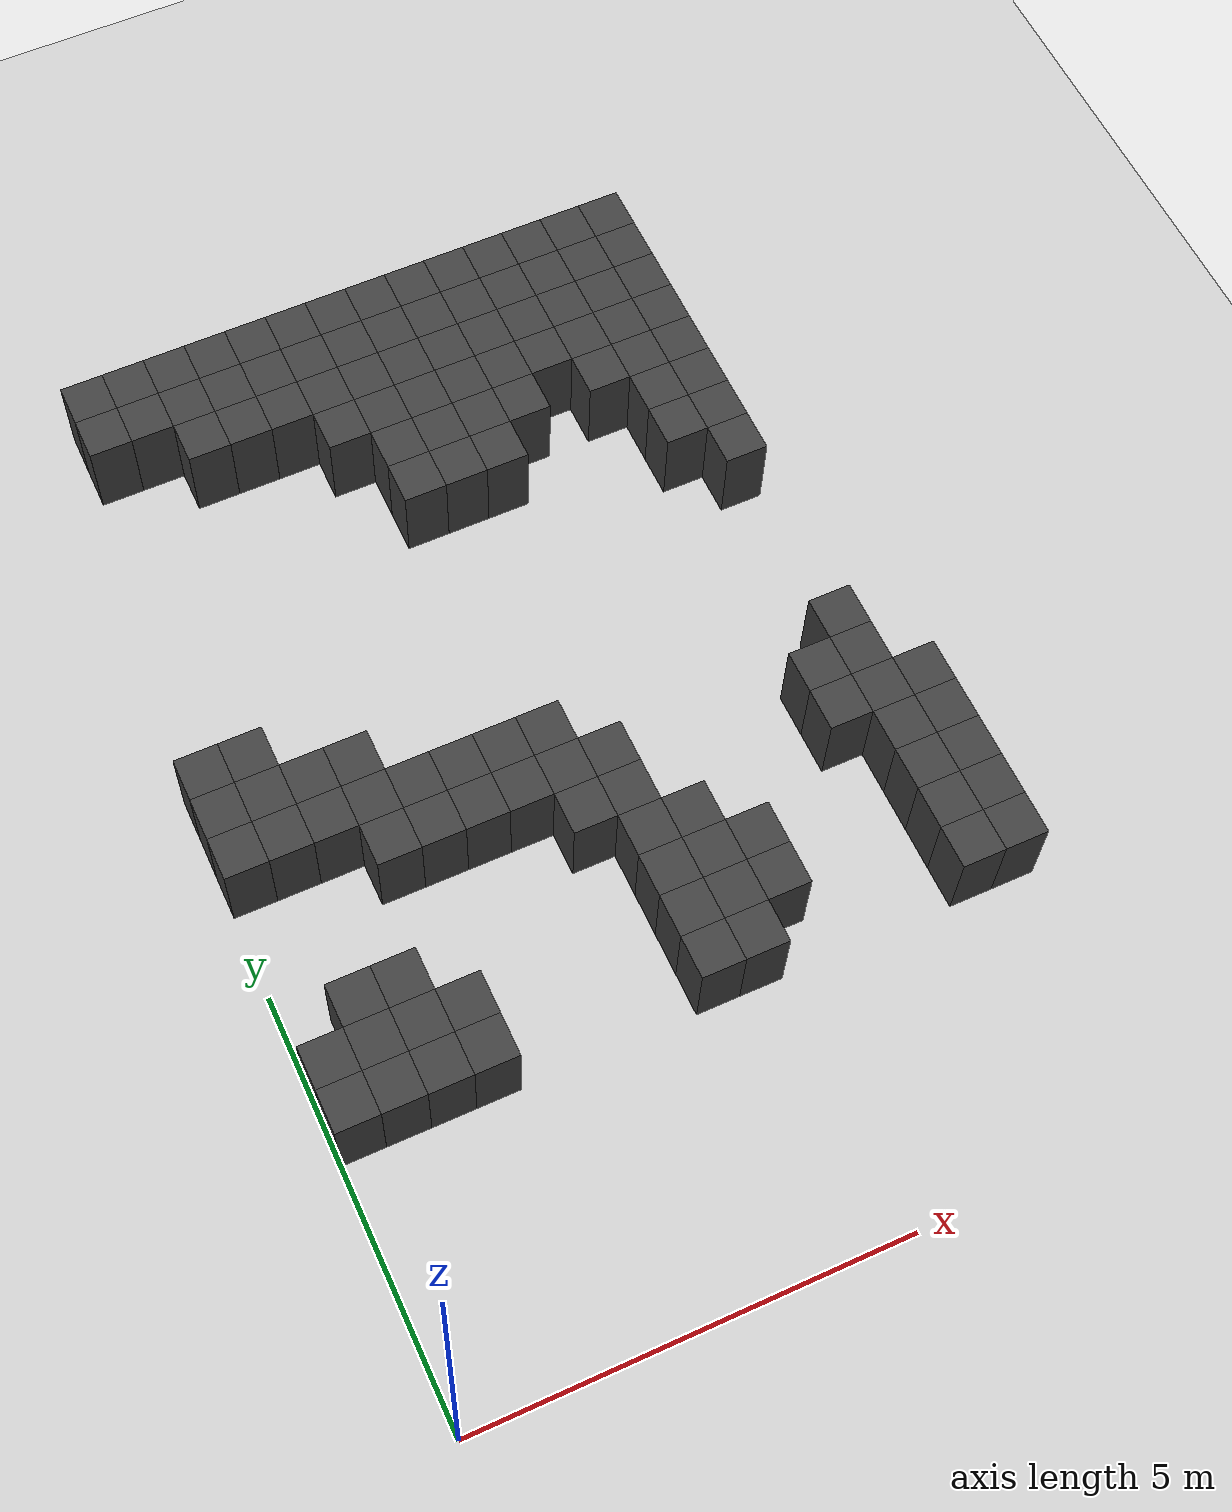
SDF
<sdf version="1.7">
 <world name="map_9826">
  <model name="ground_plane">
   <static>true</static>
   <link name="link">
    <collision name="collision">
     <geometry><plane><normal>0 0 1</normal><size>200 200</size></plane></geometry>
    </collision>
    <visual name="visual">
     <geometry><plane><normal>0 0 1</normal><size>200 200</size></plane></geometry>
     <material><ambient>0.8 0.8 0.8 1</ambient><diffuse>0.8 0.8 0.8 1</diffuse></material>
    </visual>
   </link>
  </model>
  <model name="maze_environment">
   <static>true</static>
   <link name="wall_26">
    <pose>0.750 12.250 0.500 0 0 0</pose>
    <collision name="col"><geometry><box><size>0.5 0.5 1.0</size></box></geometry></collision>
    <visual name="vis">
     <geometry><box><size>0.5 0.5 1.0</size></box></geometry>
     <material><ambient>0.15 0.15 0.15 1</ambient><diffuse>0.25 0.25 0.25 1</diffuse></material>
    </visual>
   </link>
   <link name="wall_27">
    <pose>1.250 12.250 0.500 0 0 0</pose>
    <collision name="col"><geometry><box><size>0.5 0.5 1.0</size></box></geometry></collision>
    <visual name="vis">
     <geometry><box><size>0.5 0.5 1.0</size></box></geometry>
     <material><ambient>0.15 0.15 0.15 1</ambient><diffuse>0.25 0.25 0.25 1</diffuse></material>
    </visual>
   </link>
   <link name="wall_28">
    <pose>1.750 12.250 0.500 0 0 0</pose>
    <collision name="col"><geometry><box><size>0.5 0.5 1.0</size></box></geometry></collision>
    <visual name="vis">
     <geometry><box><size>0.5 0.5 1.0</size></box></geometry>
     <material><ambient>0.15 0.15 0.15 1</ambient><diffuse>0.25 0.25 0.25 1</diffuse></material>
    </visual>
   </link>
   <link name="wall_29">
    <pose>2.250 12.250 0.500 0 0 0</pose>
    <collision name="col"><geometry><box><size>0.5 0.5 1.0</size></box></geometry></collision>
    <visual name="vis">
     <geometry><box><size>0.5 0.5 1.0</size></box></geometry>
     <material><ambient>0.15 0.15 0.15 1</ambient><diffuse>0.25 0.25 0.25 1</diffuse></material>
    </visual>
   </link>
   <link name="wall_30">
    <pose>2.750 12.250 0.500 0 0 0</pose>
    <collision name="col"><geometry><box><size>0.5 0.5 1.0</size></box></geometry></collision>
    <visual name="vis">
     <geometry><box><size>0.5 0.5 1.0</size></box></geometry>
     <material><ambient>0.15 0.15 0.15 1</ambient><diffuse>0.25 0.25 0.25 1</diffuse></material>
    </visual>
   </link>
   <link name="wall_31">
    <pose>3.250 12.250 0.500 0 0 0</pose>
    <collision name="col"><geometry><box><size>0.5 0.5 1.0</size></box></geometry></collision>
    <visual name="vis">
     <geometry><box><size>0.5 0.5 1.0</size></box></geometry>
     <material><ambient>0.15 0.15 0.15 1</ambient><diffuse>0.25 0.25 0.25 1</diffuse></material>
    </visual>
   </link>
   <link name="wall_32">
    <pose>3.750 12.250 0.500 0 0 0</pose>
    <collision name="col"><geometry><box><size>0.5 0.5 1.0</size></box></geometry></collision>
    <visual name="vis">
     <geometry><box><size>0.5 0.5 1.0</size></box></geometry>
     <material><ambient>0.15 0.15 0.15 1</ambient><diffuse>0.25 0.25 0.25 1</diffuse></material>
    </visual>
   </link>
   <link name="wall_33">
    <pose>4.250 12.250 0.500 0 0 0</pose>
    <collision name="col"><geometry><box><size>0.5 0.5 1.0</size></box></geometry></collision>
    <visual name="vis">
     <geometry><box><size>0.5 0.5 1.0</size></box></geometry>
     <material><ambient>0.15 0.15 0.15 1</ambient><diffuse>0.25 0.25 0.25 1</diffuse></material>
    </visual>
   </link>
   <link name="wall_34">
    <pose>4.750 12.250 0.500 0 0 0</pose>
    <collision name="col"><geometry><box><size>0.5 0.5 1.0</size></box></geometry></collision>
    <visual name="vis">
     <geometry><box><size>0.5 0.5 1.0</size></box></geometry>
     <material><ambient>0.15 0.15 0.15 1</ambient><diffuse>0.25 0.25 0.25 1</diffuse></material>
    </visual>
   </link>
   <link name="wall_35">
    <pose>5.250 12.250 0.500 0 0 0</pose>
    <collision name="col"><geometry><box><size>0.5 0.5 1.0</size></box></geometry></collision>
    <visual name="vis">
     <geometry><box><size>0.5 0.5 1.0</size></box></geometry>
     <material><ambient>0.15 0.15 0.15 1</ambient><diffuse>0.25 0.25 0.25 1</diffuse></material>
    </visual>
   </link>
   <link name="wall_36">
    <pose>5.750 12.250 0.500 0 0 0</pose>
    <collision name="col"><geometry><box><size>0.5 0.5 1.0</size></box></geometry></collision>
    <visual name="vis">
     <geometry><box><size>0.5 0.5 1.0</size></box></geometry>
     <material><ambient>0.15 0.15 0.15 1</ambient><diffuse>0.25 0.25 0.25 1</diffuse></material>
    </visual>
   </link>
   <link name="wall_37">
    <pose>6.250 12.250 0.500 0 0 0</pose>
    <collision name="col"><geometry><box><size>0.5 0.5 1.0</size></box></geometry></collision>
    <visual name="vis">
     <geometry><box><size>0.5 0.5 1.0</size></box></geometry>
     <material><ambient>0.15 0.15 0.15 1</ambient><diffuse>0.25 0.25 0.25 1</diffuse></material>
    </visual>
   </link>
   <link name="wall_38">
    <pose>6.750 12.250 0.500 0 0 0</pose>
    <collision name="col"><geometry><box><size>0.5 0.5 1.0</size></box></geometry></collision>
    <visual name="vis">
     <geometry><box><size>0.5 0.5 1.0</size></box></geometry>
     <material><ambient>0.15 0.15 0.15 1</ambient><diffuse>0.25 0.25 0.25 1</diffuse></material>
    </visual>
   </link>
   <link name="wall_39">
    <pose>7.250 12.250 0.500 0 0 0</pose>
    <collision name="col"><geometry><box><size>0.5 0.5 1.0</size></box></geometry></collision>
    <visual name="vis">
     <geometry><box><size>0.5 0.5 1.0</size></box></geometry>
     <material><ambient>0.15 0.15 0.15 1</ambient><diffuse>0.25 0.25 0.25 1</diffuse></material>
    </visual>
   </link>
   <link name="wall_70">
    <pose>0.750 11.750 0.500 0 0 0</pose>
    <collision name="col"><geometry><box><size>0.5 0.5 1.0</size></box></geometry></collision>
    <visual name="vis">
     <geometry><box><size>0.5 0.5 1.0</size></box></geometry>
     <material><ambient>0.15 0.15 0.15 1</ambient><diffuse>0.25 0.25 0.25 1</diffuse></material>
    </visual>
   </link>
   <link name="wall_71">
    <pose>1.250 11.750 0.500 0 0 0</pose>
    <collision name="col"><geometry><box><size>0.5 0.5 1.0</size></box></geometry></collision>
    <visual name="vis">
     <geometry><box><size>0.5 0.5 1.0</size></box></geometry>
     <material><ambient>0.15 0.15 0.15 1</ambient><diffuse>0.25 0.25 0.25 1</diffuse></material>
    </visual>
   </link>
   <link name="wall_72">
    <pose>1.750 11.750 0.500 0 0 0</pose>
    <collision name="col"><geometry><box><size>0.5 0.5 1.0</size></box></geometry></collision>
    <visual name="vis">
     <geometry><box><size>0.5 0.5 1.0</size></box></geometry>
     <material><ambient>0.15 0.15 0.15 1</ambient><diffuse>0.25 0.25 0.25 1</diffuse></material>
    </visual>
   </link>
   <link name="wall_73">
    <pose>2.250 11.750 0.500 0 0 0</pose>
    <collision name="col"><geometry><box><size>0.5 0.5 1.0</size></box></geometry></collision>
    <visual name="vis">
     <geometry><box><size>0.5 0.5 1.0</size></box></geometry>
     <material><ambient>0.15 0.15 0.15 1</ambient><diffuse>0.25 0.25 0.25 1</diffuse></material>
    </visual>
   </link>
   <link name="wall_74">
    <pose>2.750 11.750 0.500 0 0 0</pose>
    <collision name="col"><geometry><box><size>0.5 0.5 1.0</size></box></geometry></collision>
    <visual name="vis">
     <geometry><box><size>0.5 0.5 1.0</size></box></geometry>
     <material><ambient>0.15 0.15 0.15 1</ambient><diffuse>0.25 0.25 0.25 1</diffuse></material>
    </visual>
   </link>
   <link name="wall_75">
    <pose>3.250 11.750 0.500 0 0 0</pose>
    <collision name="col"><geometry><box><size>0.5 0.5 1.0</size></box></geometry></collision>
    <visual name="vis">
     <geometry><box><size>0.5 0.5 1.0</size></box></geometry>
     <material><ambient>0.15 0.15 0.15 1</ambient><diffuse>0.25 0.25 0.25 1</diffuse></material>
    </visual>
   </link>
   <link name="wall_76">
    <pose>3.750 11.750 0.500 0 0 0</pose>
    <collision name="col"><geometry><box><size>0.5 0.5 1.0</size></box></geometry></collision>
    <visual name="vis">
     <geometry><box><size>0.5 0.5 1.0</size></box></geometry>
     <material><ambient>0.15 0.15 0.15 1</ambient><diffuse>0.25 0.25 0.25 1</diffuse></material>
    </visual>
   </link>
   <link name="wall_77">
    <pose>4.250 11.750 0.500 0 0 0</pose>
    <collision name="col"><geometry><box><size>0.5 0.5 1.0</size></box></geometry></collision>
    <visual name="vis">
     <geometry><box><size>0.5 0.5 1.0</size></box></geometry>
     <material><ambient>0.15 0.15 0.15 1</ambient><diffuse>0.25 0.25 0.25 1</diffuse></material>
    </visual>
   </link>
   <link name="wall_78">
    <pose>4.750 11.750 0.500 0 0 0</pose>
    <collision name="col"><geometry><box><size>0.5 0.5 1.0</size></box></geometry></collision>
    <visual name="vis">
     <geometry><box><size>0.5 0.5 1.0</size></box></geometry>
     <material><ambient>0.15 0.15 0.15 1</ambient><diffuse>0.25 0.25 0.25 1</diffuse></material>
    </visual>
   </link>
   <link name="wall_79">
    <pose>5.250 11.750 0.500 0 0 0</pose>
    <collision name="col"><geometry><box><size>0.5 0.5 1.0</size></box></geometry></collision>
    <visual name="vis">
     <geometry><box><size>0.5 0.5 1.0</size></box></geometry>
     <material><ambient>0.15 0.15 0.15 1</ambient><diffuse>0.25 0.25 0.25 1</diffuse></material>
    </visual>
   </link>
   <link name="wall_80">
    <pose>5.750 11.750 0.500 0 0 0</pose>
    <collision name="col"><geometry><box><size>0.5 0.5 1.0</size></box></geometry></collision>
    <visual name="vis">
     <geometry><box><size>0.5 0.5 1.0</size></box></geometry>
     <material><ambient>0.15 0.15 0.15 1</ambient><diffuse>0.25 0.25 0.25 1</diffuse></material>
    </visual>
   </link>
   <link name="wall_81">
    <pose>6.250 11.750 0.500 0 0 0</pose>
    <collision name="col"><geometry><box><size>0.5 0.5 1.0</size></box></geometry></collision>
    <visual name="vis">
     <geometry><box><size>0.5 0.5 1.0</size></box></geometry>
     <material><ambient>0.15 0.15 0.15 1</ambient><diffuse>0.25 0.25 0.25 1</diffuse></material>
    </visual>
   </link>
   <link name="wall_82">
    <pose>6.750 11.750 0.500 0 0 0</pose>
    <collision name="col"><geometry><box><size>0.5 0.5 1.0</size></box></geometry></collision>
    <visual name="vis">
     <geometry><box><size>0.5 0.5 1.0</size></box></geometry>
     <material><ambient>0.15 0.15 0.15 1</ambient><diffuse>0.25 0.25 0.25 1</diffuse></material>
    </visual>
   </link>
   <link name="wall_83">
    <pose>7.250 11.750 0.500 0 0 0</pose>
    <collision name="col"><geometry><box><size>0.5 0.5 1.0</size></box></geometry></collision>
    <visual name="vis">
     <geometry><box><size>0.5 0.5 1.0</size></box></geometry>
     <material><ambient>0.15 0.15 0.15 1</ambient><diffuse>0.25 0.25 0.25 1</diffuse></material>
    </visual>
   </link>
   <link name="wall_102">
    <pose>1.750 11.250 0.500 0 0 0</pose>
    <collision name="col"><geometry><box><size>0.5 0.5 1.0</size></box></geometry></collision>
    <visual name="vis">
     <geometry><box><size>0.5 0.5 1.0</size></box></geometry>
     <material><ambient>0.15 0.15 0.15 1</ambient><diffuse>0.25 0.25 0.25 1</diffuse></material>
    </visual>
   </link>
   <link name="wall_103">
    <pose>2.250 11.250 0.500 0 0 0</pose>
    <collision name="col"><geometry><box><size>0.5 0.5 1.0</size></box></geometry></collision>
    <visual name="vis">
     <geometry><box><size>0.5 0.5 1.0</size></box></geometry>
     <material><ambient>0.15 0.15 0.15 1</ambient><diffuse>0.25 0.25 0.25 1</diffuse></material>
    </visual>
   </link>
   <link name="wall_104">
    <pose>2.750 11.250 0.500 0 0 0</pose>
    <collision name="col"><geometry><box><size>0.5 0.5 1.0</size></box></geometry></collision>
    <visual name="vis">
     <geometry><box><size>0.5 0.5 1.0</size></box></geometry>
     <material><ambient>0.15 0.15 0.15 1</ambient><diffuse>0.25 0.25 0.25 1</diffuse></material>
    </visual>
   </link>
   <link name="wall_105">
    <pose>3.250 11.250 0.500 0 0 0</pose>
    <collision name="col"><geometry><box><size>0.5 0.5 1.0</size></box></geometry></collision>
    <visual name="vis">
     <geometry><box><size>0.5 0.5 1.0</size></box></geometry>
     <material><ambient>0.15 0.15 0.15 1</ambient><diffuse>0.25 0.25 0.25 1</diffuse></material>
    </visual>
   </link>
   <link name="wall_106">
    <pose>3.750 11.250 0.500 0 0 0</pose>
    <collision name="col"><geometry><box><size>0.5 0.5 1.0</size></box></geometry></collision>
    <visual name="vis">
     <geometry><box><size>0.5 0.5 1.0</size></box></geometry>
     <material><ambient>0.15 0.15 0.15 1</ambient><diffuse>0.25 0.25 0.25 1</diffuse></material>
    </visual>
   </link>
   <link name="wall_107">
    <pose>4.250 11.250 0.500 0 0 0</pose>
    <collision name="col"><geometry><box><size>0.5 0.5 1.0</size></box></geometry></collision>
    <visual name="vis">
     <geometry><box><size>0.5 0.5 1.0</size></box></geometry>
     <material><ambient>0.15 0.15 0.15 1</ambient><diffuse>0.25 0.25 0.25 1</diffuse></material>
    </visual>
   </link>
   <link name="wall_108">
    <pose>4.750 11.250 0.500 0 0 0</pose>
    <collision name="col"><geometry><box><size>0.5 0.5 1.0</size></box></geometry></collision>
    <visual name="vis">
     <geometry><box><size>0.5 0.5 1.0</size></box></geometry>
     <material><ambient>0.15 0.15 0.15 1</ambient><diffuse>0.25 0.25 0.25 1</diffuse></material>
    </visual>
   </link>
   <link name="wall_109">
    <pose>5.250 11.250 0.500 0 0 0</pose>
    <collision name="col"><geometry><box><size>0.5 0.5 1.0</size></box></geometry></collision>
    <visual name="vis">
     <geometry><box><size>0.5 0.5 1.0</size></box></geometry>
     <material><ambient>0.15 0.15 0.15 1</ambient><diffuse>0.25 0.25 0.25 1</diffuse></material>
    </visual>
   </link>
   <link name="wall_110">
    <pose>5.750 11.250 0.500 0 0 0</pose>
    <collision name="col"><geometry><box><size>0.5 0.5 1.0</size></box></geometry></collision>
    <visual name="vis">
     <geometry><box><size>0.5 0.5 1.0</size></box></geometry>
     <material><ambient>0.15 0.15 0.15 1</ambient><diffuse>0.25 0.25 0.25 1</diffuse></material>
    </visual>
   </link>
   <link name="wall_111">
    <pose>6.250 11.250 0.500 0 0 0</pose>
    <collision name="col"><geometry><box><size>0.5 0.5 1.0</size></box></geometry></collision>
    <visual name="vis">
     <geometry><box><size>0.5 0.5 1.0</size></box></geometry>
     <material><ambient>0.15 0.15 0.15 1</ambient><diffuse>0.25 0.25 0.25 1</diffuse></material>
    </visual>
   </link>
   <link name="wall_112">
    <pose>6.750 11.250 0.500 0 0 0</pose>
    <collision name="col"><geometry><box><size>0.5 0.5 1.0</size></box></geometry></collision>
    <visual name="vis">
     <geometry><box><size>0.5 0.5 1.0</size></box></geometry>
     <material><ambient>0.15 0.15 0.15 1</ambient><diffuse>0.25 0.25 0.25 1</diffuse></material>
    </visual>
   </link>
   <link name="wall_113">
    <pose>7.250 11.250 0.500 0 0 0</pose>
    <collision name="col"><geometry><box><size>0.5 0.5 1.0</size></box></geometry></collision>
    <visual name="vis">
     <geometry><box><size>0.5 0.5 1.0</size></box></geometry>
     <material><ambient>0.15 0.15 0.15 1</ambient><diffuse>0.25 0.25 0.25 1</diffuse></material>
    </visual>
   </link>
   <link name="wall_127">
    <pose>3.250 10.750 0.500 0 0 0</pose>
    <collision name="col"><geometry><box><size>0.5 0.5 1.0</size></box></geometry></collision>
    <visual name="vis">
     <geometry><box><size>0.5 0.5 1.0</size></box></geometry>
     <material><ambient>0.15 0.15 0.15 1</ambient><diffuse>0.25 0.25 0.25 1</diffuse></material>
    </visual>
   </link>
   <link name="wall_128">
    <pose>3.750 10.750 0.500 0 0 0</pose>
    <collision name="col"><geometry><box><size>0.5 0.5 1.0</size></box></geometry></collision>
    <visual name="vis">
     <geometry><box><size>0.5 0.5 1.0</size></box></geometry>
     <material><ambient>0.15 0.15 0.15 1</ambient><diffuse>0.25 0.25 0.25 1</diffuse></material>
    </visual>
   </link>
   <link name="wall_129">
    <pose>4.250 10.750 0.500 0 0 0</pose>
    <collision name="col"><geometry><box><size>0.5 0.5 1.0</size></box></geometry></collision>
    <visual name="vis">
     <geometry><box><size>0.5 0.5 1.0</size></box></geometry>
     <material><ambient>0.15 0.15 0.15 1</ambient><diffuse>0.25 0.25 0.25 1</diffuse></material>
    </visual>
   </link>
   <link name="wall_130">
    <pose>4.750 10.750 0.500 0 0 0</pose>
    <collision name="col"><geometry><box><size>0.5 0.5 1.0</size></box></geometry></collision>
    <visual name="vis">
     <geometry><box><size>0.5 0.5 1.0</size></box></geometry>
     <material><ambient>0.15 0.15 0.15 1</ambient><diffuse>0.25 0.25 0.25 1</diffuse></material>
    </visual>
   </link>
   <link name="wall_131">
    <pose>5.250 10.750 0.500 0 0 0</pose>
    <collision name="col"><geometry><box><size>0.5 0.5 1.0</size></box></geometry></collision>
    <visual name="vis">
     <geometry><box><size>0.5 0.5 1.0</size></box></geometry>
     <material><ambient>0.15 0.15 0.15 1</ambient><diffuse>0.25 0.25 0.25 1</diffuse></material>
    </visual>
   </link>
   <link name="wall_132">
    <pose>5.750 10.750 0.500 0 0 0</pose>
    <collision name="col"><geometry><box><size>0.5 0.5 1.0</size></box></geometry></collision>
    <visual name="vis">
     <geometry><box><size>0.5 0.5 1.0</size></box></geometry>
     <material><ambient>0.15 0.15 0.15 1</ambient><diffuse>0.25 0.25 0.25 1</diffuse></material>
    </visual>
   </link>
   <link name="wall_133">
    <pose>6.250 10.750 0.500 0 0 0</pose>
    <collision name="col"><geometry><box><size>0.5 0.5 1.0</size></box></geometry></collision>
    <visual name="vis">
     <geometry><box><size>0.5 0.5 1.0</size></box></geometry>
     <material><ambient>0.15 0.15 0.15 1</ambient><diffuse>0.25 0.25 0.25 1</diffuse></material>
    </visual>
   </link>
   <link name="wall_134">
    <pose>6.750 10.750 0.500 0 0 0</pose>
    <collision name="col"><geometry><box><size>0.5 0.5 1.0</size></box></geometry></collision>
    <visual name="vis">
     <geometry><box><size>0.5 0.5 1.0</size></box></geometry>
     <material><ambient>0.15 0.15 0.15 1</ambient><diffuse>0.25 0.25 0.25 1</diffuse></material>
    </visual>
   </link>
   <link name="wall_135">
    <pose>7.250 10.750 0.500 0 0 0</pose>
    <collision name="col"><geometry><box><size>0.5 0.5 1.0</size></box></geometry></collision>
    <visual name="vis">
     <geometry><box><size>0.5 0.5 1.0</size></box></geometry>
     <material><ambient>0.15 0.15 0.15 1</ambient><diffuse>0.25 0.25 0.25 1</diffuse></material>
    </visual>
   </link>
   <link name="wall_156">
    <pose>3.750 10.250 0.500 0 0 0</pose>
    <collision name="col"><geometry><box><size>0.5 0.5 1.0</size></box></geometry></collision>
    <visual name="vis">
     <geometry><box><size>0.5 0.5 1.0</size></box></geometry>
     <material><ambient>0.15 0.15 0.15 1</ambient><diffuse>0.25 0.25 0.25 1</diffuse></material>
    </visual>
   </link>
   <link name="wall_157">
    <pose>4.250 10.250 0.500 0 0 0</pose>
    <collision name="col"><geometry><box><size>0.5 0.5 1.0</size></box></geometry></collision>
    <visual name="vis">
     <geometry><box><size>0.5 0.5 1.0</size></box></geometry>
     <material><ambient>0.15 0.15 0.15 1</ambient><diffuse>0.25 0.25 0.25 1</diffuse></material>
    </visual>
   </link>
   <link name="wall_158">
    <pose>4.750 10.250 0.500 0 0 0</pose>
    <collision name="col"><geometry><box><size>0.5 0.5 1.0</size></box></geometry></collision>
    <visual name="vis">
     <geometry><box><size>0.5 0.5 1.0</size></box></geometry>
     <material><ambient>0.15 0.15 0.15 1</ambient><diffuse>0.25 0.25 0.25 1</diffuse></material>
    </visual>
   </link>
   <link name="wall_159">
    <pose>5.250 10.250 0.500 0 0 0</pose>
    <collision name="col"><geometry><box><size>0.5 0.5 1.0</size></box></geometry></collision>
    <visual name="vis">
     <geometry><box><size>0.5 0.5 1.0</size></box></geometry>
     <material><ambient>0.15 0.15 0.15 1</ambient><diffuse>0.25 0.25 0.25 1</diffuse></material>
    </visual>
   </link>
   <link name="wall_160">
    <pose>6.250 10.250 0.500 0 0 0</pose>
    <collision name="col"><geometry><box><size>0.5 0.5 1.0</size></box></geometry></collision>
    <visual name="vis">
     <geometry><box><size>0.5 0.5 1.0</size></box></geometry>
     <material><ambient>0.15 0.15 0.15 1</ambient><diffuse>0.25 0.25 0.25 1</diffuse></material>
    </visual>
   </link>
   <link name="wall_161">
    <pose>6.750 10.250 0.500 0 0 0</pose>
    <collision name="col"><geometry><box><size>0.5 0.5 1.0</size></box></geometry></collision>
    <visual name="vis">
     <geometry><box><size>0.5 0.5 1.0</size></box></geometry>
     <material><ambient>0.15 0.15 0.15 1</ambient><diffuse>0.25 0.25 0.25 1</diffuse></material>
    </visual>
   </link>
   <link name="wall_162">
    <pose>7.250 10.250 0.500 0 0 0</pose>
    <collision name="col"><geometry><box><size>0.5 0.5 1.0</size></box></geometry></collision>
    <visual name="vis">
     <geometry><box><size>0.5 0.5 1.0</size></box></geometry>
     <material><ambient>0.15 0.15 0.15 1</ambient><diffuse>0.25 0.25 0.25 1</diffuse></material>
    </visual>
   </link>
   <link name="wall_186">
    <pose>3.750 9.750 0.500 0 0 0</pose>
    <collision name="col"><geometry><box><size>0.5 0.5 1.0</size></box></geometry></collision>
    <visual name="vis">
     <geometry><box><size>0.5 0.5 1.0</size></box></geometry>
     <material><ambient>0.15 0.15 0.15 1</ambient><diffuse>0.25 0.25 0.25 1</diffuse></material>
    </visual>
   </link>
   <link name="wall_187">
    <pose>4.250 9.750 0.500 0 0 0</pose>
    <collision name="col"><geometry><box><size>0.5 0.5 1.0</size></box></geometry></collision>
    <visual name="vis">
     <geometry><box><size>0.5 0.5 1.0</size></box></geometry>
     <material><ambient>0.15 0.15 0.15 1</ambient><diffuse>0.25 0.25 0.25 1</diffuse></material>
    </visual>
   </link>
   <link name="wall_188">
    <pose>4.750 9.750 0.500 0 0 0</pose>
    <collision name="col"><geometry><box><size>0.5 0.5 1.0</size></box></geometry></collision>
    <visual name="vis">
     <geometry><box><size>0.5 0.5 1.0</size></box></geometry>
     <material><ambient>0.15 0.15 0.15 1</ambient><diffuse>0.25 0.25 0.25 1</diffuse></material>
    </visual>
   </link>
   <link name="wall_189">
    <pose>6.750 9.750 0.500 0 0 0</pose>
    <collision name="col"><geometry><box><size>0.5 0.5 1.0</size></box></geometry></collision>
    <visual name="vis">
     <geometry><box><size>0.5 0.5 1.0</size></box></geometry>
     <material><ambient>0.15 0.15 0.15 1</ambient><diffuse>0.25 0.25 0.25 1</diffuse></material>
    </visual>
   </link>
   <link name="wall_190">
    <pose>7.250 9.750 0.500 0 0 0</pose>
    <collision name="col"><geometry><box><size>0.5 0.5 1.0</size></box></geometry></collision>
    <visual name="vis">
     <geometry><box><size>0.5 0.5 1.0</size></box></geometry>
     <material><ambient>0.15 0.15 0.15 1</ambient><diffuse>0.25 0.25 0.25 1</diffuse></material>
    </visual>
   </link>
   <link name="wall_215">
    <pose>6.750 9.250 0.500 0 0 0</pose>
    <collision name="col"><geometry><box><size>0.5 0.5 1.0</size></box></geometry></collision>
    <visual name="vis">
     <geometry><box><size>0.5 0.5 1.0</size></box></geometry>
     <material><ambient>0.15 0.15 0.15 1</ambient><diffuse>0.25 0.25 0.25 1</diffuse></material>
    </visual>
   </link>
   <link name="wall_216">
    <pose>7.250 9.250 0.500 0 0 0</pose>
    <collision name="col"><geometry><box><size>0.5 0.5 1.0</size></box></geometry></collision>
    <visual name="vis">
     <geometry><box><size>0.5 0.5 1.0</size></box></geometry>
     <material><ambient>0.15 0.15 0.15 1</ambient><diffuse>0.25 0.25 0.25 1</diffuse></material>
    </visual>
   </link>
   <link name="wall_240">
    <pose>7.250 8.750 0.500 0 0 0</pose>
    <collision name="col"><geometry><box><size>0.5 0.5 1.0</size></box></geometry></collision>
    <visual name="vis">
     <geometry><box><size>0.5 0.5 1.0</size></box></geometry>
     <material><ambient>0.15 0.15 0.15 1</ambient><diffuse>0.25 0.25 0.25 1</diffuse></material>
    </visual>
   </link>
   <link name="wall_272">
    <pose>0.250 7.250 0.500 0 0 0</pose>
    <collision name="col"><geometry><box><size>0.5 0.5 1.0</size></box></geometry></collision>
    <visual name="vis">
     <geometry><box><size>0.5 0.5 1.0</size></box></geometry>
     <material><ambient>0.15 0.15 0.15 1</ambient><diffuse>0.25 0.25 0.25 1</diffuse></material>
    </visual>
   </link>
   <link name="wall_273">
    <pose>0.750 7.250 0.500 0 0 0</pose>
    <collision name="col"><geometry><box><size>0.5 0.5 1.0</size></box></geometry></collision>
    <visual name="vis">
     <geometry><box><size>0.5 0.5 1.0</size></box></geometry>
     <material><ambient>0.15 0.15 0.15 1</ambient><diffuse>0.25 0.25 0.25 1</diffuse></material>
    </visual>
   </link>
   <link name="wall_282">
    <pose>0.250 6.750 0.500 0 0 0</pose>
    <collision name="col"><geometry><box><size>0.5 0.5 1.0</size></box></geometry></collision>
    <visual name="vis">
     <geometry><box><size>0.5 0.5 1.0</size></box></geometry>
     <material><ambient>0.15 0.15 0.15 1</ambient><diffuse>0.25 0.25 0.25 1</diffuse></material>
    </visual>
   </link>
   <link name="wall_283">
    <pose>0.750 6.750 0.500 0 0 0</pose>
    <collision name="col"><geometry><box><size>0.5 0.5 1.0</size></box></geometry></collision>
    <visual name="vis">
     <geometry><box><size>0.5 0.5 1.0</size></box></geometry>
     <material><ambient>0.15 0.15 0.15 1</ambient><diffuse>0.25 0.25 0.25 1</diffuse></material>
    </visual>
   </link>
   <link name="wall_284">
    <pose>1.250 6.750 0.500 0 0 0</pose>
    <collision name="col"><geometry><box><size>0.5 0.5 1.0</size></box></geometry></collision>
    <visual name="vis">
     <geometry><box><size>0.5 0.5 1.0</size></box></geometry>
     <material><ambient>0.15 0.15 0.15 1</ambient><diffuse>0.25 0.25 0.25 1</diffuse></material>
    </visual>
   </link>
   <link name="wall_285">
    <pose>1.750 6.750 0.500 0 0 0</pose>
    <collision name="col"><geometry><box><size>0.5 0.5 1.0</size></box></geometry></collision>
    <visual name="vis">
     <geometry><box><size>0.5 0.5 1.0</size></box></geometry>
     <material><ambient>0.15 0.15 0.15 1</ambient><diffuse>0.25 0.25 0.25 1</diffuse></material>
    </visual>
   </link>
   <link name="wall_297">
    <pose>0.250 6.250 0.500 0 0 0</pose>
    <collision name="col"><geometry><box><size>0.5 0.5 1.0</size></box></geometry></collision>
    <visual name="vis">
     <geometry><box><size>0.5 0.5 1.0</size></box></geometry>
     <material><ambient>0.15 0.15 0.15 1</ambient><diffuse>0.25 0.25 0.25 1</diffuse></material>
    </visual>
   </link>
   <link name="wall_298">
    <pose>0.750 6.250 0.500 0 0 0</pose>
    <collision name="col"><geometry><box><size>0.5 0.5 1.0</size></box></geometry></collision>
    <visual name="vis">
     <geometry><box><size>0.5 0.5 1.0</size></box></geometry>
     <material><ambient>0.15 0.15 0.15 1</ambient><diffuse>0.25 0.25 0.25 1</diffuse></material>
    </visual>
   </link>
   <link name="wall_299">
    <pose>1.250 6.250 0.500 0 0 0</pose>
    <collision name="col"><geometry><box><size>0.5 0.5 1.0</size></box></geometry></collision>
    <visual name="vis">
     <geometry><box><size>0.5 0.5 1.0</size></box></geometry>
     <material><ambient>0.15 0.15 0.15 1</ambient><diffuse>0.25 0.25 0.25 1</diffuse></material>
    </visual>
   </link>
   <link name="wall_300">
    <pose>1.750 6.250 0.500 0 0 0</pose>
    <collision name="col"><geometry><box><size>0.5 0.5 1.0</size></box></geometry></collision>
    <visual name="vis">
     <geometry><box><size>0.5 0.5 1.0</size></box></geometry>
     <material><ambient>0.15 0.15 0.15 1</ambient><diffuse>0.25 0.25 0.25 1</diffuse></material>
    </visual>
   </link>
   <link name="wall_301">
    <pose>2.250 6.250 0.500 0 0 0</pose>
    <collision name="col"><geometry><box><size>0.5 0.5 1.0</size></box></geometry></collision>
    <visual name="vis">
     <geometry><box><size>0.5 0.5 1.0</size></box></geometry>
     <material><ambient>0.15 0.15 0.15 1</ambient><diffuse>0.25 0.25 0.25 1</diffuse></material>
    </visual>
   </link>
   <link name="wall_302">
    <pose>2.750 6.250 0.500 0 0 0</pose>
    <collision name="col"><geometry><box><size>0.5 0.5 1.0</size></box></geometry></collision>
    <visual name="vis">
     <geometry><box><size>0.5 0.5 1.0</size></box></geometry>
     <material><ambient>0.15 0.15 0.15 1</ambient><diffuse>0.25 0.25 0.25 1</diffuse></material>
    </visual>
   </link>
   <link name="wall_303">
    <pose>3.250 6.250 0.500 0 0 0</pose>
    <collision name="col"><geometry><box><size>0.5 0.5 1.0</size></box></geometry></collision>
    <visual name="vis">
     <geometry><box><size>0.5 0.5 1.0</size></box></geometry>
     <material><ambient>0.15 0.15 0.15 1</ambient><diffuse>0.25 0.25 0.25 1</diffuse></material>
    </visual>
   </link>
   <link name="wall_304">
    <pose>3.750 6.250 0.500 0 0 0</pose>
    <collision name="col"><geometry><box><size>0.5 0.5 1.0</size></box></geometry></collision>
    <visual name="vis">
     <geometry><box><size>0.5 0.5 1.0</size></box></geometry>
     <material><ambient>0.15 0.15 0.15 1</ambient><diffuse>0.25 0.25 0.25 1</diffuse></material>
    </visual>
   </link>
   <link name="wall_305">
    <pose>7.250 6.250 0.500 0 0 0</pose>
    <collision name="col"><geometry><box><size>0.5 0.5 1.0</size></box></geometry></collision>
    <visual name="vis">
     <geometry><box><size>0.5 0.5 1.0</size></box></geometry>
     <material><ambient>0.15 0.15 0.15 1</ambient><diffuse>0.25 0.25 0.25 1</diffuse></material>
    </visual>
   </link>
   <link name="wall_315">
    <pose>1.750 5.750 0.500 0 0 0</pose>
    <collision name="col"><geometry><box><size>0.5 0.5 1.0</size></box></geometry></collision>
    <visual name="vis">
     <geometry><box><size>0.5 0.5 1.0</size></box></geometry>
     <material><ambient>0.15 0.15 0.15 1</ambient><diffuse>0.25 0.25 0.25 1</diffuse></material>
    </visual>
   </link>
   <link name="wall_316">
    <pose>2.250 5.750 0.500 0 0 0</pose>
    <collision name="col"><geometry><box><size>0.5 0.5 1.0</size></box></geometry></collision>
    <visual name="vis">
     <geometry><box><size>0.5 0.5 1.0</size></box></geometry>
     <material><ambient>0.15 0.15 0.15 1</ambient><diffuse>0.25 0.25 0.25 1</diffuse></material>
    </visual>
   </link>
   <link name="wall_317">
    <pose>2.750 5.750 0.500 0 0 0</pose>
    <collision name="col"><geometry><box><size>0.5 0.5 1.0</size></box></geometry></collision>
    <visual name="vis">
     <geometry><box><size>0.5 0.5 1.0</size></box></geometry>
     <material><ambient>0.15 0.15 0.15 1</ambient><diffuse>0.25 0.25 0.25 1</diffuse></material>
    </visual>
   </link>
   <link name="wall_318">
    <pose>3.250 5.750 0.500 0 0 0</pose>
    <collision name="col"><geometry><box><size>0.5 0.5 1.0</size></box></geometry></collision>
    <visual name="vis">
     <geometry><box><size>0.5 0.5 1.0</size></box></geometry>
     <material><ambient>0.15 0.15 0.15 1</ambient><diffuse>0.25 0.25 0.25 1</diffuse></material>
    </visual>
   </link>
   <link name="wall_319">
    <pose>3.750 5.750 0.500 0 0 0</pose>
    <collision name="col"><geometry><box><size>0.5 0.5 1.0</size></box></geometry></collision>
    <visual name="vis">
     <geometry><box><size>0.5 0.5 1.0</size></box></geometry>
     <material><ambient>0.15 0.15 0.15 1</ambient><diffuse>0.25 0.25 0.25 1</diffuse></material>
    </visual>
   </link>
   <link name="wall_320">
    <pose>4.250 5.750 0.500 0 0 0</pose>
    <collision name="col"><geometry><box><size>0.5 0.5 1.0</size></box></geometry></collision>
    <visual name="vis">
     <geometry><box><size>0.5 0.5 1.0</size></box></geometry>
     <material><ambient>0.15 0.15 0.15 1</ambient><diffuse>0.25 0.25 0.25 1</diffuse></material>
    </visual>
   </link>
   <link name="wall_321">
    <pose>6.750 5.750 0.500 0 0 0</pose>
    <collision name="col"><geometry><box><size>0.5 0.5 1.0</size></box></geometry></collision>
    <visual name="vis">
     <geometry><box><size>0.5 0.5 1.0</size></box></geometry>
     <material><ambient>0.15 0.15 0.15 1</ambient><diffuse>0.25 0.25 0.25 1</diffuse></material>
    </visual>
   </link>
   <link name="wall_322">
    <pose>7.250 5.750 0.500 0 0 0</pose>
    <collision name="col"><geometry><box><size>0.5 0.5 1.0</size></box></geometry></collision>
    <visual name="vis">
     <geometry><box><size>0.5 0.5 1.0</size></box></geometry>
     <material><ambient>0.15 0.15 0.15 1</ambient><diffuse>0.25 0.25 0.25 1</diffuse></material>
    </visual>
   </link>
   <link name="wall_332">
    <pose>3.750 5.250 0.500 0 0 0</pose>
    <collision name="col"><geometry><box><size>0.5 0.5 1.0</size></box></geometry></collision>
    <visual name="vis">
     <geometry><box><size>0.5 0.5 1.0</size></box></geometry>
     <material><ambient>0.15 0.15 0.15 1</ambient><diffuse>0.25 0.25 0.25 1</diffuse></material>
    </visual>
   </link>
   <link name="wall_333">
    <pose>4.250 5.250 0.500 0 0 0</pose>
    <collision name="col"><geometry><box><size>0.5 0.5 1.0</size></box></geometry></collision>
    <visual name="vis">
     <geometry><box><size>0.5 0.5 1.0</size></box></geometry>
     <material><ambient>0.15 0.15 0.15 1</ambient><diffuse>0.25 0.25 0.25 1</diffuse></material>
    </visual>
   </link>
   <link name="wall_334">
    <pose>6.750 5.250 0.500 0 0 0</pose>
    <collision name="col"><geometry><box><size>0.5 0.5 1.0</size></box></geometry></collision>
    <visual name="vis">
     <geometry><box><size>0.5 0.5 1.0</size></box></geometry>
     <material><ambient>0.15 0.15 0.15 1</ambient><diffuse>0.25 0.25 0.25 1</diffuse></material>
    </visual>
   </link>
   <link name="wall_335">
    <pose>7.250 5.250 0.500 0 0 0</pose>
    <collision name="col"><geometry><box><size>0.5 0.5 1.0</size></box></geometry></collision>
    <visual name="vis">
     <geometry><box><size>0.5 0.5 1.0</size></box></geometry>
     <material><ambient>0.15 0.15 0.15 1</ambient><diffuse>0.25 0.25 0.25 1</diffuse></material>
    </visual>
   </link>
   <link name="wall_336">
    <pose>7.750 5.250 0.500 0 0 0</pose>
    <collision name="col"><geometry><box><size>0.5 0.5 1.0</size></box></geometry></collision>
    <visual name="vis">
     <geometry><box><size>0.5 0.5 1.0</size></box></geometry>
     <material><ambient>0.15 0.15 0.15 1</ambient><diffuse>0.25 0.25 0.25 1</diffuse></material>
    </visual>
   </link>
   <link name="wall_346">
    <pose>4.250 4.750 0.500 0 0 0</pose>
    <collision name="col"><geometry><box><size>0.5 0.5 1.0</size></box></geometry></collision>
    <visual name="vis">
     <geometry><box><size>0.5 0.5 1.0</size></box></geometry>
     <material><ambient>0.15 0.15 0.15 1</ambient><diffuse>0.25 0.25 0.25 1</diffuse></material>
    </visual>
   </link>
   <link name="wall_347">
    <pose>4.750 4.750 0.500 0 0 0</pose>
    <collision name="col"><geometry><box><size>0.5 0.5 1.0</size></box></geometry></collision>
    <visual name="vis">
     <geometry><box><size>0.5 0.5 1.0</size></box></geometry>
     <material><ambient>0.15 0.15 0.15 1</ambient><diffuse>0.25 0.25 0.25 1</diffuse></material>
    </visual>
   </link>
   <link name="wall_348">
    <pose>7.250 4.750 0.500 0 0 0</pose>
    <collision name="col"><geometry><box><size>0.5 0.5 1.0</size></box></geometry></collision>
    <visual name="vis">
     <geometry><box><size>0.5 0.5 1.0</size></box></geometry>
     <material><ambient>0.15 0.15 0.15 1</ambient><diffuse>0.25 0.25 0.25 1</diffuse></material>
    </visual>
   </link>
   <link name="wall_349">
    <pose>7.750 4.750 0.500 0 0 0</pose>
    <collision name="col"><geometry><box><size>0.5 0.5 1.0</size></box></geometry></collision>
    <visual name="vis">
     <geometry><box><size>0.5 0.5 1.0</size></box></geometry>
     <material><ambient>0.15 0.15 0.15 1</ambient><diffuse>0.25 0.25 0.25 1</diffuse></material>
    </visual>
   </link>
   <link name="wall_358">
    <pose>0.750 4.250 0.500 0 0 0</pose>
    <collision name="col"><geometry><box><size>0.5 0.5 1.0</size></box></geometry></collision>
    <visual name="vis">
     <geometry><box><size>0.5 0.5 1.0</size></box></geometry>
     <material><ambient>0.15 0.15 0.15 1</ambient><diffuse>0.25 0.25 0.25 1</diffuse></material>
    </visual>
   </link>
   <link name="wall_359">
    <pose>1.250 4.250 0.500 0 0 0</pose>
    <collision name="col"><geometry><box><size>0.5 0.5 1.0</size></box></geometry></collision>
    <visual name="vis">
     <geometry><box><size>0.5 0.5 1.0</size></box></geometry>
     <material><ambient>0.15 0.15 0.15 1</ambient><diffuse>0.25 0.25 0.25 1</diffuse></material>
    </visual>
   </link>
   <link name="wall_360">
    <pose>4.250 4.250 0.500 0 0 0</pose>
    <collision name="col"><geometry><box><size>0.5 0.5 1.0</size></box></geometry></collision>
    <visual name="vis">
     <geometry><box><size>0.5 0.5 1.0</size></box></geometry>
     <material><ambient>0.15 0.15 0.15 1</ambient><diffuse>0.25 0.25 0.25 1</diffuse></material>
    </visual>
   </link>
   <link name="wall_361">
    <pose>4.750 4.250 0.500 0 0 0</pose>
    <collision name="col"><geometry><box><size>0.5 0.5 1.0</size></box></geometry></collision>
    <visual name="vis">
     <geometry><box><size>0.5 0.5 1.0</size></box></geometry>
     <material><ambient>0.15 0.15 0.15 1</ambient><diffuse>0.25 0.25 0.25 1</diffuse></material>
    </visual>
   </link>
   <link name="wall_362">
    <pose>5.250 4.250 0.500 0 0 0</pose>
    <collision name="col"><geometry><box><size>0.5 0.5 1.0</size></box></geometry></collision>
    <visual name="vis">
     <geometry><box><size>0.5 0.5 1.0</size></box></geometry>
     <material><ambient>0.15 0.15 0.15 1</ambient><diffuse>0.25 0.25 0.25 1</diffuse></material>
    </visual>
   </link>
   <link name="wall_363">
    <pose>7.250 4.250 0.500 0 0 0</pose>
    <collision name="col"><geometry><box><size>0.5 0.5 1.0</size></box></geometry></collision>
    <visual name="vis">
     <geometry><box><size>0.5 0.5 1.0</size></box></geometry>
     <material><ambient>0.15 0.15 0.15 1</ambient><diffuse>0.25 0.25 0.25 1</diffuse></material>
    </visual>
   </link>
   <link name="wall_364">
    <pose>7.750 4.250 0.500 0 0 0</pose>
    <collision name="col"><geometry><box><size>0.5 0.5 1.0</size></box></geometry></collision>
    <visual name="vis">
     <geometry><box><size>0.5 0.5 1.0</size></box></geometry>
     <material><ambient>0.15 0.15 0.15 1</ambient><diffuse>0.25 0.25 0.25 1</diffuse></material>
    </visual>
   </link>
   <link name="wall_371">
    <pose>0.250 3.750 0.500 0 0 0</pose>
    <collision name="col"><geometry><box><size>0.5 0.5 1.0</size></box></geometry></collision>
    <visual name="vis">
     <geometry><box><size>0.5 0.5 1.0</size></box></geometry>
     <material><ambient>0.15 0.15 0.15 1</ambient><diffuse>0.25 0.25 0.25 1</diffuse></material>
    </visual>
   </link>
   <link name="wall_372">
    <pose>0.750 3.750 0.500 0 0 0</pose>
    <collision name="col"><geometry><box><size>0.5 0.5 1.0</size></box></geometry></collision>
    <visual name="vis">
     <geometry><box><size>0.5 0.5 1.0</size></box></geometry>
     <material><ambient>0.15 0.15 0.15 1</ambient><diffuse>0.25 0.25 0.25 1</diffuse></material>
    </visual>
   </link>
   <link name="wall_373">
    <pose>1.250 3.750 0.500 0 0 0</pose>
    <collision name="col"><geometry><box><size>0.5 0.5 1.0</size></box></geometry></collision>
    <visual name="vis">
     <geometry><box><size>0.5 0.5 1.0</size></box></geometry>
     <material><ambient>0.15 0.15 0.15 1</ambient><diffuse>0.25 0.25 0.25 1</diffuse></material>
    </visual>
   </link>
   <link name="wall_374">
    <pose>1.750 3.750 0.500 0 0 0</pose>
    <collision name="col"><geometry><box><size>0.5 0.5 1.0</size></box></geometry></collision>
    <visual name="vis">
     <geometry><box><size>0.5 0.5 1.0</size></box></geometry>
     <material><ambient>0.15 0.15 0.15 1</ambient><diffuse>0.25 0.25 0.25 1</diffuse></material>
    </visual>
   </link>
   <link name="wall_375">
    <pose>4.250 3.750 0.500 0 0 0</pose>
    <collision name="col"><geometry><box><size>0.5 0.5 1.0</size></box></geometry></collision>
    <visual name="vis">
     <geometry><box><size>0.5 0.5 1.0</size></box></geometry>
     <material><ambient>0.15 0.15 0.15 1</ambient><diffuse>0.25 0.25 0.25 1</diffuse></material>
    </visual>
   </link>
   <link name="wall_376">
    <pose>4.750 3.750 0.500 0 0 0</pose>
    <collision name="col"><geometry><box><size>0.5 0.5 1.0</size></box></geometry></collision>
    <visual name="vis">
     <geometry><box><size>0.5 0.5 1.0</size></box></geometry>
     <material><ambient>0.15 0.15 0.15 1</ambient><diffuse>0.25 0.25 0.25 1</diffuse></material>
    </visual>
   </link>
   <link name="wall_377">
    <pose>5.250 3.750 0.500 0 0 0</pose>
    <collision name="col"><geometry><box><size>0.5 0.5 1.0</size></box></geometry></collision>
    <visual name="vis">
     <geometry><box><size>0.5 0.5 1.0</size></box></geometry>
     <material><ambient>0.15 0.15 0.15 1</ambient><diffuse>0.25 0.25 0.25 1</diffuse></material>
    </visual>
   </link>
   <link name="wall_378">
    <pose>7.250 3.750 0.500 0 0 0</pose>
    <collision name="col"><geometry><box><size>0.5 0.5 1.0</size></box></geometry></collision>
    <visual name="vis">
     <geometry><box><size>0.5 0.5 1.0</size></box></geometry>
     <material><ambient>0.15 0.15 0.15 1</ambient><diffuse>0.25 0.25 0.25 1</diffuse></material>
    </visual>
   </link>
   <link name="wall_379">
    <pose>7.750 3.750 0.500 0 0 0</pose>
    <collision name="col"><geometry><box><size>0.5 0.5 1.0</size></box></geometry></collision>
    <visual name="vis">
     <geometry><box><size>0.5 0.5 1.0</size></box></geometry>
     <material><ambient>0.15 0.15 0.15 1</ambient><diffuse>0.25 0.25 0.25 1</diffuse></material>
    </visual>
   </link>
   <link name="wall_388">
    <pose>0.250 3.250 0.500 0 0 0</pose>
    <collision name="col"><geometry><box><size>0.5 0.5 1.0</size></box></geometry></collision>
    <visual name="vis">
     <geometry><box><size>0.5 0.5 1.0</size></box></geometry>
     <material><ambient>0.15 0.15 0.15 1</ambient><diffuse>0.25 0.25 0.25 1</diffuse></material>
    </visual>
   </link>
   <link name="wall_389">
    <pose>0.750 3.250 0.500 0 0 0</pose>
    <collision name="col"><geometry><box><size>0.5 0.5 1.0</size></box></geometry></collision>
    <visual name="vis">
     <geometry><box><size>0.5 0.5 1.0</size></box></geometry>
     <material><ambient>0.15 0.15 0.15 1</ambient><diffuse>0.25 0.25 0.25 1</diffuse></material>
    </visual>
   </link>
   <link name="wall_390">
    <pose>1.250 3.250 0.500 0 0 0</pose>
    <collision name="col"><geometry><box><size>0.5 0.5 1.0</size></box></geometry></collision>
    <visual name="vis">
     <geometry><box><size>0.5 0.5 1.0</size></box></geometry>
     <material><ambient>0.15 0.15 0.15 1</ambient><diffuse>0.25 0.25 0.25 1</diffuse></material>
    </visual>
   </link>
   <link name="wall_391">
    <pose>1.750 3.250 0.500 0 0 0</pose>
    <collision name="col"><geometry><box><size>0.5 0.5 1.0</size></box></geometry></collision>
    <visual name="vis">
     <geometry><box><size>0.5 0.5 1.0</size></box></geometry>
     <material><ambient>0.15 0.15 0.15 1</ambient><diffuse>0.25 0.25 0.25 1</diffuse></material>
    </visual>
   </link>
   <link name="wall_392">
    <pose>4.250 3.250 0.500 0 0 0</pose>
    <collision name="col"><geometry><box><size>0.5 0.5 1.0</size></box></geometry></collision>
    <visual name="vis">
     <geometry><box><size>0.5 0.5 1.0</size></box></geometry>
     <material><ambient>0.15 0.15 0.15 1</ambient><diffuse>0.25 0.25 0.25 1</diffuse></material>
    </visual>
   </link>
   <link name="wall_393">
    <pose>4.750 3.250 0.500 0 0 0</pose>
    <collision name="col"><geometry><box><size>0.5 0.5 1.0</size></box></geometry></collision>
    <visual name="vis">
     <geometry><box><size>0.5 0.5 1.0</size></box></geometry>
     <material><ambient>0.15 0.15 0.15 1</ambient><diffuse>0.25 0.25 0.25 1</diffuse></material>
    </visual>
   </link>
   <link name="wall_394">
    <pose>7.250 3.250 0.500 0 0 0</pose>
    <collision name="col"><geometry><box><size>0.5 0.5 1.0</size></box></geometry></collision>
    <visual name="vis">
     <geometry><box><size>0.5 0.5 1.0</size></box></geometry>
     <material><ambient>0.15 0.15 0.15 1</ambient><diffuse>0.25 0.25 0.25 1</diffuse></material>
    </visual>
   </link>
   <link name="wall_395">
    <pose>7.750 3.250 0.500 0 0 0</pose>
    <collision name="col"><geometry><box><size>0.5 0.5 1.0</size></box></geometry></collision>
    <visual name="vis">
     <geometry><box><size>0.5 0.5 1.0</size></box></geometry>
     <material><ambient>0.15 0.15 0.15 1</ambient><diffuse>0.25 0.25 0.25 1</diffuse></material>
    </visual>
   </link>
  </model>
 </world>
</sdf>
